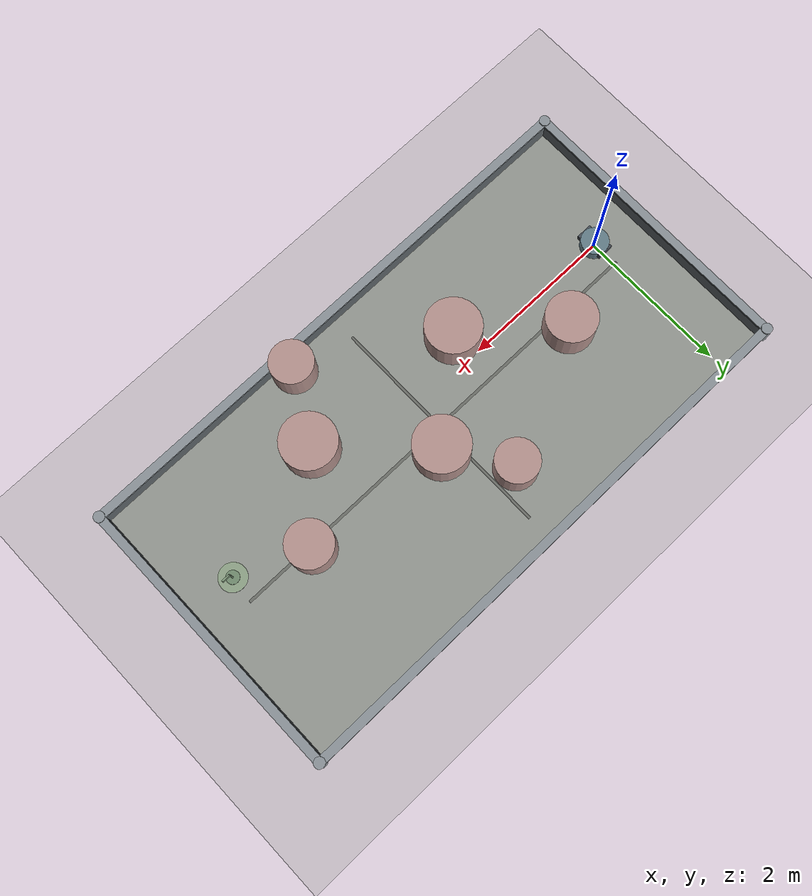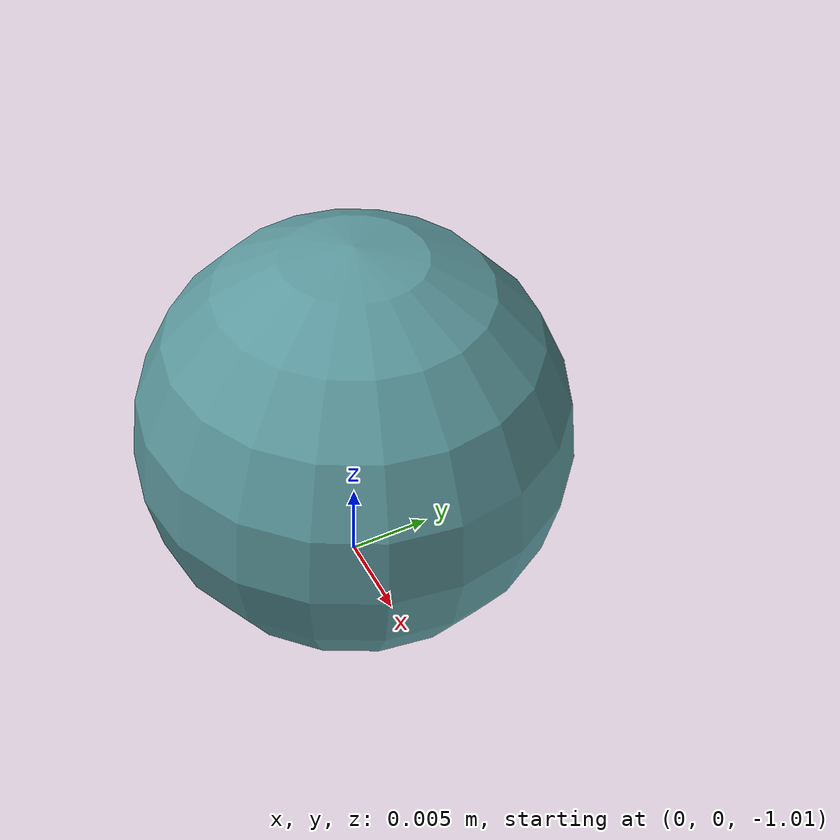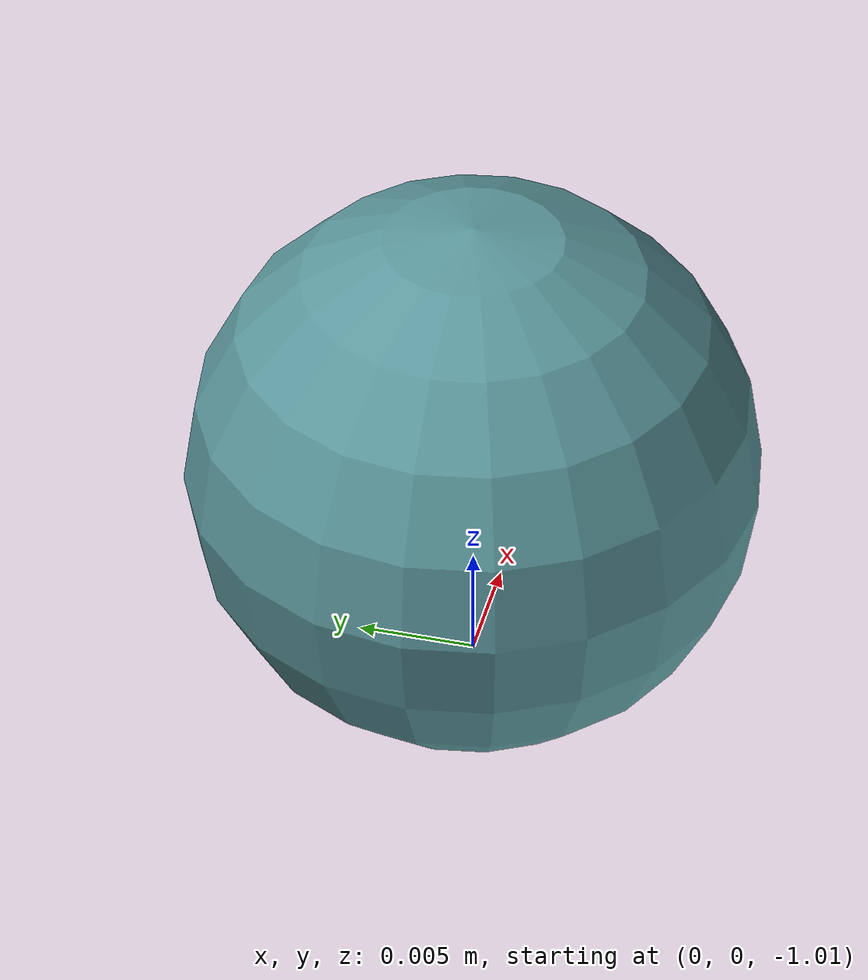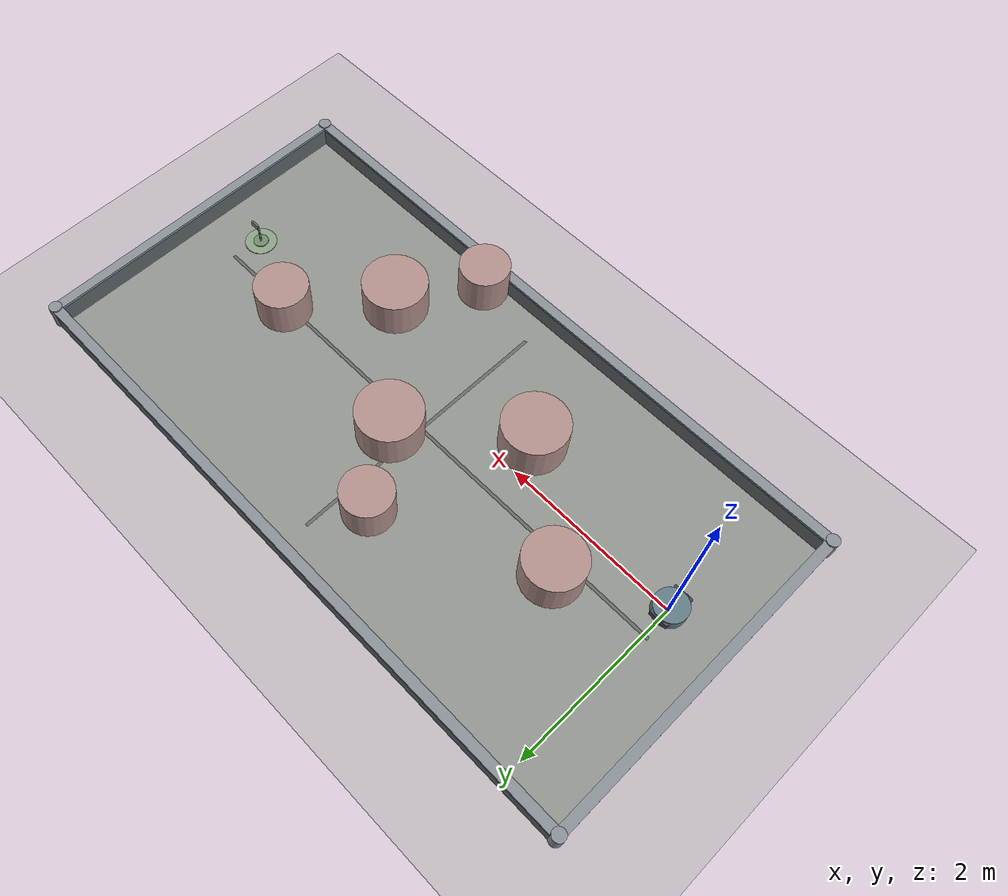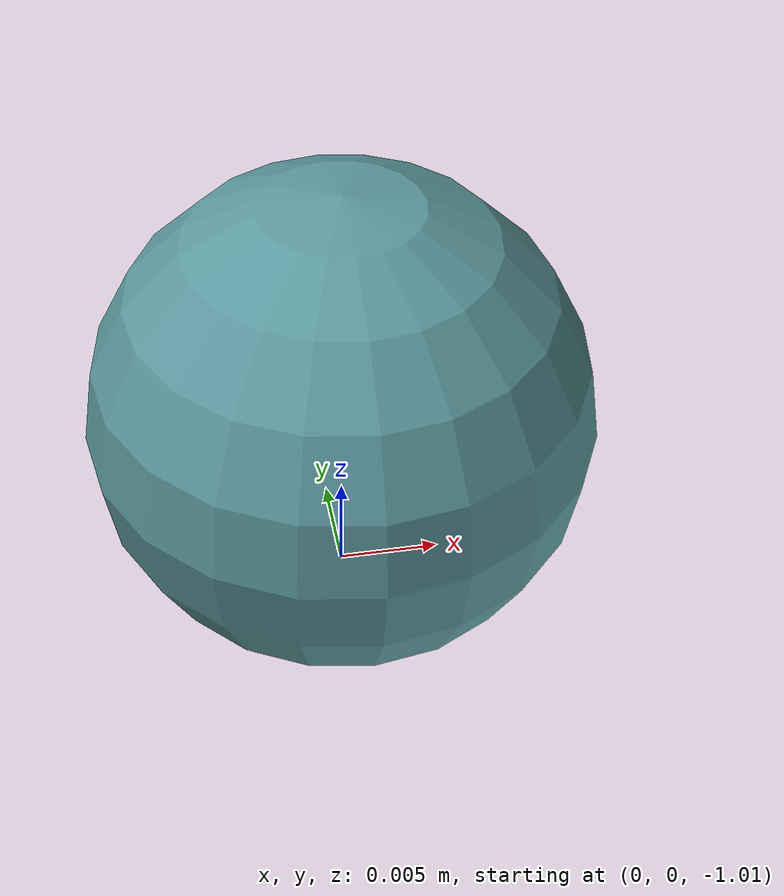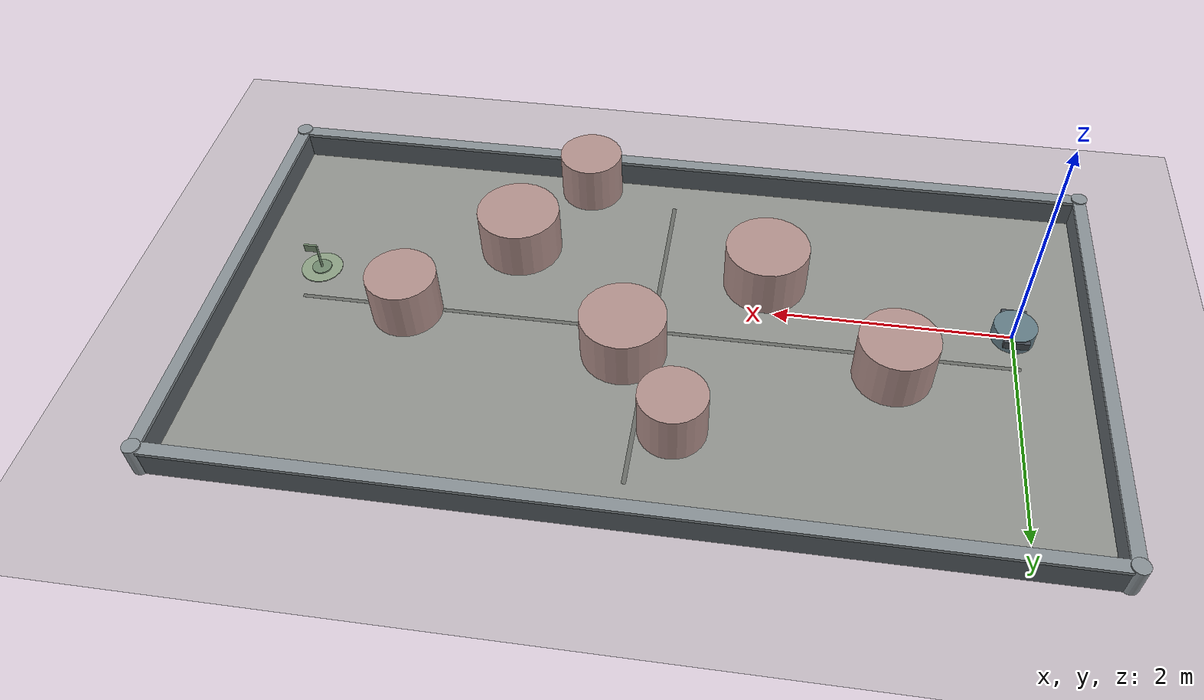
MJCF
<mujoco model="dense_scene">
  <compiler angle="radian"/>
  <option timestep="0.02" gravity="0 0 -9.81"/>

  <statistic center="3.0 0.35 0.20" extent="5.2"/>

  <visual>
    <headlight ambient="0.44 0.45 0.46" diffuse="0.66 0.67 0.69" specular="0.05 0.05 0.05"/>
    <rgba haze="0.78 0.79 0.80 1"/>
    <map znear="0.01" zfar="40"/>
  </visual>

  <asset>
    <texture name="sky_tex" type="skybox" builtin="gradient"
             rgb1="0.70 0.72 0.74" rgb2="0.52 0.55 0.58"
             width="512" height="512"/>

    <texture name="floor_tex" type="2d" builtin="checker"
             rgb1="0.64 0.64 0.62" rgb2="0.55 0.56 0.54"
             width="512" height="512"/>

    <material name="floor_mat" texture="floor_tex" texrepeat="12 12" reflectance="0.02"/>
    <material name="arena_mat" rgba="0.57 0.58 0.56 1"/>
    <material name="guide_mat" rgba="0.44 0.45 0.43 0.88"/>

    <material name="wall_mat" rgba="0.37 0.40 0.42 0.96"/>
    <material name="wall_cap_mat" rgba="0.54 0.57 0.59 1"/>

    <material name="robot_base_mat" rgba="0.39 0.49 0.53 1"/>
    <material name="robot_top_mat" rgba="0.74 0.76 0.74 1"/>
    <material name="robot_nose_mat" rgba="0.62 0.56 0.50 1"/>
    <material name="robot_wheel_mat" rgba="0.28 0.31 0.34 1"/>

    <material name="goal_ring_mat" rgba="0.55 0.63 0.52 0.94"/>
    <material name="goal_core_mat" rgba="0.44 0.54 0.43 1"/>
    <material name="goal_flag_mat" rgba="0.49 0.59 0.47 1"/>

    <material name="obs_body_mat" rgba="0.70 0.57 0.55 1"/>
    <material name="obs_cap_mat" rgba="0.78 0.68 0.66 1"/>
    <material name="obs_shadow_mat" rgba="0.38 0.31 0.30 0.14"/>

    <material name="pred_best_mat" rgba="0.36 0.60 0.62 1.00"/>
    <material name="pred_aux0_mat" rgba="0.74 0.63 0.42 1.00"/>
    <material name="pred_aux1_mat" rgba="0.66 0.54 0.60 1.00"/>
    <material name="trail_mat" rgba="0.67 0.54 0.40 0.92"/>
  </asset>

  <default>
    <default class="viz_only">
      <geom contype="0" conaffinity="0"/>
    </default>

    <default class="boundary_wall">
      <geom type="box" material="wall_mat"/>
    </default>

    <default class="pred_best_point">
      <geom type="sphere" size="0.0120" material="pred_best_mat" contype="0" conaffinity="0"/>
    </default>
    <default class="pred_aux0_point">
      <geom type="sphere" size="0.0100" material="pred_aux0_mat" contype="0" conaffinity="0"/>
    </default>
    <default class="pred_aux1_point">
      <geom type="sphere" size="0.0100" material="pred_aux1_mat" contype="0" conaffinity="0"/>
    </default>
    <default class="trail_point">
      <geom type="sphere" size="0.0060" material="trail_mat" contype="0" conaffinity="0"/>
    </default>
  </default>

  <worldbody>
    <light name="sun" pos="3.0 0.35 6.5" dir="0 0 -1" directional="true"
           diffuse="0.76 0.76 0.77" specular="0.08 0.08 0.08"/>
    <light name="fill" pos="1.5 -2.8 3.4" diffuse="0.18 0.18 0.18" specular="0 0 0"/>

    <geom name="floor" type="plane" size="8 8 0.1" material="floor_mat"/>
    <geom name="arena_pad" type="box" pos="3.0 0.35 0.006" size="3.60 1.85 0.006" material="arena_mat"/>

    <geom name="guide_center_x" type="box" pos="3.0 0.35 0.012" size="3.05 0.018 0.001" material="guide_mat" contype="0" conaffinity="0"/>
    <geom name="guide_center_y" type="box" pos="3.0 0.35 0.012" size="0.018 1.55 0.001" material="guide_mat" contype="0" conaffinity="0"/>

    <!-- visible bounds aligned with dense scene bounds -->
    <body name="boundary_left" pos="-0.65 0.35 0.12">
      <geom class="boundary_wall" size="0.05 1.85 0.12"/>
      <geom type="box" pos="0 0 0.13" size="0.055 1.88 0.015" material="wall_cap_mat"/>
    </body>

    <body name="boundary_right" pos="6.65 0.35 0.12">
      <geom class="boundary_wall" size="0.05 1.85 0.12"/>
      <geom type="box" pos="0 0 0.13" size="0.055 1.88 0.015" material="wall_cap_mat"/>
    </body>

    <body name="boundary_bottom" pos="3.0 -1.55 0.12">
      <geom class="boundary_wall" size="3.65 0.05 0.12"/>
      <geom type="box" pos="0 0 0.13" size="3.68 0.055 0.015" material="wall_cap_mat"/>
    </body>

    <body name="boundary_top" pos="3.0 2.25 0.12">
      <geom class="boundary_wall" size="3.65 0.05 0.12"/>
      <geom type="box" pos="0 0 0.13" size="3.68 0.055 0.015" material="wall_cap_mat"/>
    </body>

    <body name="corner_lb" pos="-0.65 -1.55 0.14">
      <geom type="cylinder" size="0.07 0.14" material="wall_cap_mat"/>
    </body>
    <body name="corner_lt" pos="-0.65 2.25 0.14">
      <geom type="cylinder" size="0.07 0.14" material="wall_cap_mat"/>
    </body>
    <body name="corner_rb" pos="6.65 -1.55 0.14">
      <geom type="cylinder" size="0.07 0.14" material="wall_cap_mat"/>
    </body>
    <body name="corner_rt" pos="6.65 2.25 0.14">
      <geom type="cylinder" size="0.07 0.14" material="wall_cap_mat"/>
    </body>

    <body name="robot" pos="0 0 0.08">
      <freejoint/>
      <geom name="robot_body" type="cylinder" size="0.18 0.08" material="robot_base_mat"/>
      <geom name="robot_top" type="cylinder" pos="0 0 0.050" size="0.135 0.018" material="robot_top_mat"/>
      <geom name="robot_nose" type="box" pos="0.125 0 0.055" size="0.050 0.028 0.018" material="robot_nose_mat"/>
      <geom name="robot_left_wheel" type="box" pos="0 0.170 0.035" size="0.105 0.020 0.035" material="robot_wheel_mat"/>
      <geom name="robot_right_wheel" type="box" pos="0 -0.170 0.035" size="0.105 0.020 0.035" material="robot_wheel_mat"/>
    </body>

    <body name="goal_marker" pos="6.0 0.0 0.0">
      <geom name="goal_ring" type="cylinder" pos="0 0 0.010" size="0.18 0.010" material="goal_ring_mat" contype="0" conaffinity="0"/>
      <geom name="goal_core" type="cylinder" pos="0 0 0.022" size="0.085 0.010" material="goal_core_mat" contype="0" conaffinity="0"/>
      <geom name="goal_pole" type="cylinder" pos="0 0 0.145" size="0.010 0.120" material="goal_core_mat" contype="0" conaffinity="0"/>
      <geom name="goal_flag" type="box" pos="0.055 0 0.245" size="0.055 0.010 0.035" material="goal_flag_mat" contype="0" conaffinity="0"/>
    </body>

    <body name="obs1" pos="1.0 0.55 0.23">
      <geom type="cylinder" size="0.33 0.23" material="obs_body_mat"/>
      <geom type="cylinder" pos="0 0 0.185" size="0.28 0.035" material="obs_cap_mat"/>
      <geom type="cylinder" pos="0 0 -0.228" size="0.39 0.004" material="obs_shadow_mat" contype="0" conaffinity="0"/>
    </body>
    <body name="obs2" pos="2.1 -0.35 0.23">
      <geom type="cylinder" size="0.36 0.23" material="obs_body_mat"/>
      <geom type="cylinder" pos="0 0 0.185" size="0.31 0.035" material="obs_cap_mat"/>
      <geom type="cylinder" pos="0 0 -0.228" size="0.42 0.004" material="obs_shadow_mat" contype="0" conaffinity="0"/>
    </body>
    <body name="obs3" pos="3.2 0.60 0.23">
      <geom type="cylinder" size="0.36 0.23" material="obs_body_mat"/>
      <geom type="cylinder" pos="0 0 0.185" size="0.31 0.035" material="obs_cap_mat"/>
      <geom type="cylinder" pos="0 0 -0.228" size="0.42 0.004" material="obs_shadow_mat" contype="0" conaffinity="0"/>
    </body>
    <body name="obs4" pos="4.3 -0.50 0.23">
      <geom type="cylinder" size="0.36 0.23" material="obs_body_mat"/>
      <geom type="cylinder" pos="0 0 0.185" size="0.31 0.035" material="obs_cap_mat"/>
      <geom type="cylinder" pos="0 0 -0.228" size="0.42 0.004" material="obs_shadow_mat" contype="0" conaffinity="0"/>
    </body>
    <body name="obs5" pos="5.1 0.40 0.23">
      <geom type="cylinder" size="0.30 0.23" material="obs_body_mat"/>
      <geom type="cylinder" pos="0 0 0.185" size="0.25 0.035" material="obs_cap_mat"/>
      <geom type="cylinder" pos="0 0 -0.228" size="0.36 0.004" material="obs_shadow_mat" contype="0" conaffinity="0"/>
    </body>
    <body name="obs6" pos="2.7 1.35 0.23">
      <geom type="cylinder" size="0.28 0.23" material="obs_body_mat"/>
      <geom type="cylinder" pos="0 0 0.185" size="0.23 0.035" material="obs_cap_mat"/>
      <geom type="cylinder" pos="0 0 -0.228" size="0.34 0.004" material="obs_shadow_mat" contype="0" conaffinity="0"/>
    </body>
    <body name="obs7" pos="3.8 -1.35 0.23">
      <geom type="cylinder" size="0.28 0.23" material="obs_body_mat"/>
      <geom type="cylinder" pos="0 0 0.185" size="0.23 0.035" material="obs_cap_mat"/>
      <geom type="cylinder" pos="0 0 -0.228" size="0.34 0.004" material="obs_shadow_mat" contype="0" conaffinity="0"/>
    </body>
    <body name="pred_best_0" mocap="true" pos="0 0 -1"><geom class="pred_best_point"/></body>
    <body name="pred_best_1" mocap="true" pos="0 0 -1"><geom class="pred_best_point"/></body>
    <body name="pred_best_2" mocap="true" pos="0 0 -1"><geom class="pred_best_point"/></body>
    <body name="pred_best_3" mocap="true" pos="0 0 -1"><geom class="pred_best_point"/></body>
    <body name="pred_best_4" mocap="true" pos="0 0 -1"><geom class="pred_best_point"/></body>
    <body name="pred_best_5" mocap="true" pos="0 0 -1"><geom class="pred_best_point"/></body>
    <body name="pred_best_6" mocap="true" pos="0 0 -1"><geom class="pred_best_point"/></body>
    <body name="pred_best_7" mocap="true" pos="0 0 -1"><geom class="pred_best_point"/></body>
    <body name="pred_best_8" mocap="true" pos="0 0 -1"><geom class="pred_best_point"/></body>
    <body name="pred_best_9" mocap="true" pos="0 0 -1"><geom class="pred_best_point"/></body>
    <body name="pred_best_10" mocap="true" pos="0 0 -1"><geom class="pred_best_point"/></body>
    <body name="pred_best_11" mocap="true" pos="0 0 -1"><geom class="pred_best_point"/></body>
    <body name="pred_best_12" mocap="true" pos="0 0 -1"><geom class="pred_best_point"/></body>
    <body name="pred_best_13" mocap="true" pos="0 0 -1"><geom class="pred_best_point"/></body>
    <body name="pred_best_14" mocap="true" pos="0 0 -1"><geom class="pred_best_point"/></body>
    <body name="pred_best_15" mocap="true" pos="0 0 -1"><geom class="pred_best_point"/></body>
    <body name="pred_best_16" mocap="true" pos="0 0 -1"><geom class="pred_best_point"/></body>
    <body name="pred_best_17" mocap="true" pos="0 0 -1"><geom class="pred_best_point"/></body>
    <body name="pred_best_18" mocap="true" pos="0 0 -1"><geom class="pred_best_point"/></body>
    <body name="pred_best_19" mocap="true" pos="0 0 -1"><geom class="pred_best_point"/></body>
    <body name="pred_best_20" mocap="true" pos="0 0 -1"><geom class="pred_best_point"/></body>
    <body name="pred_best_21" mocap="true" pos="0 0 -1"><geom class="pred_best_point"/></body>
    <body name="pred_best_22" mocap="true" pos="0 0 -1"><geom class="pred_best_point"/></body>
    <body name="pred_best_23" mocap="true" pos="0 0 -1"><geom class="pred_best_point"/></body>
    <body name="pred_best_24" mocap="true" pos="0 0 -1"><geom class="pred_best_point"/></body>
    <body name="pred_best_25" mocap="true" pos="0 0 -1"><geom class="pred_best_point"/></body>
    <body name="pred_best_26" mocap="true" pos="0 0 -1"><geom class="pred_best_point"/></body>
    <body name="pred_best_27" mocap="true" pos="0 0 -1"><geom class="pred_best_point"/></body>
    <body name="pred_best_28" mocap="true" pos="0 0 -1"><geom class="pred_best_point"/></body>
    <body name="pred_best_29" mocap="true" pos="0 0 -1"><geom class="pred_best_point"/></body>
    <body name="pred_best_30" mocap="true" pos="0 0 -1"><geom class="pred_best_point"/></body>
    <body name="pred_best_31" mocap="true" pos="0 0 -1"><geom class="pred_best_point"/></body>
    <body name="pred_best_32" mocap="true" pos="0 0 -1"><geom class="pred_best_point"/></body>
    <body name="pred_best_33" mocap="true" pos="0 0 -1"><geom class="pred_best_point"/></body>
    <body name="pred_best_34" mocap="true" pos="0 0 -1"><geom class="pred_best_point"/></body>
    <body name="pred_best_35" mocap="true" pos="0 0 -1"><geom class="pred_best_point"/></body>
    <body name="pred_best_36" mocap="true" pos="0 0 -1"><geom class="pred_best_point"/></body>
    <body name="pred_best_37" mocap="true" pos="0 0 -1"><geom class="pred_best_point"/></body>
    <body name="pred_best_38" mocap="true" pos="0 0 -1"><geom class="pred_best_point"/></body>
    <body name="pred_best_39" mocap="true" pos="0 0 -1"><geom class="pred_best_point"/></body>
    <body name="pred_aux0_0" mocap="true" pos="0 0 -1"><geom class="pred_aux0_point"/></body>
    <body name="pred_aux0_1" mocap="true" pos="0 0 -1"><geom class="pred_aux0_point"/></body>
    <body name="pred_aux0_2" mocap="true" pos="0 0 -1"><geom class="pred_aux0_point"/></body>
    <body name="pred_aux0_3" mocap="true" pos="0 0 -1"><geom class="pred_aux0_point"/></body>
    <body name="pred_aux0_4" mocap="true" pos="0 0 -1"><geom class="pred_aux0_point"/></body>
    <body name="pred_aux0_5" mocap="true" pos="0 0 -1"><geom class="pred_aux0_point"/></body>
    <body name="pred_aux0_6" mocap="true" pos="0 0 -1"><geom class="pred_aux0_point"/></body>
    <body name="pred_aux0_7" mocap="true" pos="0 0 -1"><geom class="pred_aux0_point"/></body>
    <body name="pred_aux0_8" mocap="true" pos="0 0 -1"><geom class="pred_aux0_point"/></body>
    <body name="pred_aux0_9" mocap="true" pos="0 0 -1"><geom class="pred_aux0_point"/></body>
    <body name="pred_aux0_10" mocap="true" pos="0 0 -1"><geom class="pred_aux0_point"/></body>
    <body name="pred_aux0_11" mocap="true" pos="0 0 -1"><geom class="pred_aux0_point"/></body>
    <body name="pred_aux0_12" mocap="true" pos="0 0 -1"><geom class="pred_aux0_point"/></body>
    <body name="pred_aux0_13" mocap="true" pos="0 0 -1"><geom class="pred_aux0_point"/></body>
    <body name="pred_aux0_14" mocap="true" pos="0 0 -1"><geom class="pred_aux0_point"/></body>
    <body name="pred_aux0_15" mocap="true" pos="0 0 -1"><geom class="pred_aux0_point"/></body>
    <body name="pred_aux0_16" mocap="true" pos="0 0 -1"><geom class="pred_aux0_point"/></body>
    <body name="pred_aux0_17" mocap="true" pos="0 0 -1"><geom class="pred_aux0_point"/></body>
    <body name="pred_aux0_18" mocap="true" pos="0 0 -1"><geom class="pred_aux0_point"/></body>
    <body name="pred_aux0_19" mocap="true" pos="0 0 -1"><geom class="pred_aux0_point"/></body>
    <body name="pred_aux0_20" mocap="true" pos="0 0 -1"><geom class="pred_aux0_point"/></body>
    <body name="pred_aux0_21" mocap="true" pos="0 0 -1"><geom class="pred_aux0_point"/></body>
    <body name="pred_aux0_22" mocap="true" pos="0 0 -1"><geom class="pred_aux0_point"/></body>
    <body name="pred_aux0_23" mocap="true" pos="0 0 -1"><geom class="pred_aux0_point"/></body>
    <body name="pred_aux0_24" mocap="true" pos="0 0 -1"><geom class="pred_aux0_point"/></body>
    <body name="pred_aux0_25" mocap="true" pos="0 0 -1"><geom class="pred_aux0_point"/></body>
    <body name="pred_aux0_26" mocap="true" pos="0 0 -1"><geom class="pred_aux0_point"/></body>
    <body name="pred_aux0_27" mocap="true" pos="0 0 -1"><geom class="pred_aux0_point"/></body>
    <body name="pred_aux0_28" mocap="true" pos="0 0 -1"><geom class="pred_aux0_point"/></body>
    <body name="pred_aux0_29" mocap="true" pos="0 0 -1"><geom class="pred_aux0_point"/></body>
    <body name="pred_aux0_30" mocap="true" pos="0 0 -1"><geom class="pred_aux0_point"/></body>
    <body name="pred_aux0_31" mocap="true" pos="0 0 -1"><geom class="pred_aux0_point"/></body>
    <body name="pred_aux0_32" mocap="true" pos="0 0 -1"><geom class="pred_aux0_point"/></body>
    <body name="pred_aux0_33" mocap="true" pos="0 0 -1"><geom class="pred_aux0_point"/></body>
    <body name="pred_aux0_34" mocap="true" pos="0 0 -1"><geom class="pred_aux0_point"/></body>
    <body name="pred_aux0_35" mocap="true" pos="0 0 -1"><geom class="pred_aux0_point"/></body>
    <body name="pred_aux0_36" mocap="true" pos="0 0 -1"><geom class="pred_aux0_point"/></body>
    <body name="pred_aux0_37" mocap="true" pos="0 0 -1"><geom class="pred_aux0_point"/></body>
    <body name="pred_aux0_38" mocap="true" pos="0 0 -1"><geom class="pred_aux0_point"/></body>
    <body name="pred_aux0_39" mocap="true" pos="0 0 -1"><geom class="pred_aux0_point"/></body>
    <body name="pred_aux1_0" mocap="true" pos="0 0 -1"><geom class="pred_aux1_point"/></body>
    <body name="pred_aux1_1" mocap="true" pos="0 0 -1"><geom class="pred_aux1_point"/></body>
    <body name="pred_aux1_2" mocap="true" pos="0 0 -1"><geom class="pred_aux1_point"/></body>
    <body name="pred_aux1_3" mocap="true" pos="0 0 -1"><geom class="pred_aux1_point"/></body>
    <body name="pred_aux1_4" mocap="true" pos="0 0 -1"><geom class="pred_aux1_point"/></body>
    <body name="pred_aux1_5" mocap="true" pos="0 0 -1"><geom class="pred_aux1_point"/></body>
    <body name="pred_aux1_6" mocap="true" pos="0 0 -1"><geom class="pred_aux1_point"/></body>
    <body name="pred_aux1_7" mocap="true" pos="0 0 -1"><geom class="pred_aux1_point"/></body>
    <body name="pred_aux1_8" mocap="true" pos="0 0 -1"><geom class="pred_aux1_point"/></body>
    <body name="pred_aux1_9" mocap="true" pos="0 0 -1"><geom class="pred_aux1_point"/></body>
    <body name="pred_aux1_10" mocap="true" pos="0 0 -1"><geom class="pred_aux1_point"/></body>
    <body name="pred_aux1_11" mocap="true" pos="0 0 -1"><geom class="pred_aux1_point"/></body>
    <body name="pred_aux1_12" mocap="true" pos="0 0 -1"><geom class="pred_aux1_point"/></body>
    <body name="pred_aux1_13" mocap="true" pos="0 0 -1"><geom class="pred_aux1_point"/></body>
    <body name="pred_aux1_14" mocap="true" pos="0 0 -1"><geom class="pred_aux1_point"/></body>
    <body name="pred_aux1_15" mocap="true" pos="0 0 -1"><geom class="pred_aux1_point"/></body>
    <body name="pred_aux1_16" mocap="true" pos="0 0 -1"><geom class="pred_aux1_point"/></body>
    <body name="pred_aux1_17" mocap="true" pos="0 0 -1"><geom class="pred_aux1_point"/></body>
    <body name="pred_aux1_18" mocap="true" pos="0 0 -1"><geom class="pred_aux1_point"/></body>
    <body name="pred_aux1_19" mocap="true" pos="0 0 -1"><geom class="pred_aux1_point"/></body>
    <body name="pred_aux1_20" mocap="true" pos="0 0 -1"><geom class="pred_aux1_point"/></body>
    <body name="pred_aux1_21" mocap="true" pos="0 0 -1"><geom class="pred_aux1_point"/></body>
    <body name="pred_aux1_22" mocap="true" pos="0 0 -1"><geom class="pred_aux1_point"/></body>
    <body name="pred_aux1_23" mocap="true" pos="0 0 -1"><geom class="pred_aux1_point"/></body>
    <body name="pred_aux1_24" mocap="true" pos="0 0 -1"><geom class="pred_aux1_point"/></body>
    <body name="pred_aux1_25" mocap="true" pos="0 0 -1"><geom class="pred_aux1_point"/></body>
    <body name="pred_aux1_26" mocap="true" pos="0 0 -1"><geom class="pred_aux1_point"/></body>
    <body name="pred_aux1_27" mocap="true" pos="0 0 -1"><geom class="pred_aux1_point"/></body>
    <body name="pred_aux1_28" mocap="true" pos="0 0 -1"><geom class="pred_aux1_point"/></body>
    <body name="pred_aux1_29" mocap="true" pos="0 0 -1"><geom class="pred_aux1_point"/></body>
    <body name="pred_aux1_30" mocap="true" pos="0 0 -1"><geom class="pred_aux1_point"/></body>
    <body name="pred_aux1_31" mocap="true" pos="0 0 -1"><geom class="pred_aux1_point"/></body>
    <body name="pred_aux1_32" mocap="true" pos="0 0 -1"><geom class="pred_aux1_point"/></body>
    <body name="pred_aux1_33" mocap="true" pos="0 0 -1"><geom class="pred_aux1_point"/></body>
    <body name="pred_aux1_34" mocap="true" pos="0 0 -1"><geom class="pred_aux1_point"/></body>
    <body name="pred_aux1_35" mocap="true" pos="0 0 -1"><geom class="pred_aux1_point"/></body>
    <body name="pred_aux1_36" mocap="true" pos="0 0 -1"><geom class="pred_aux1_point"/></body>
    <body name="pred_aux1_37" mocap="true" pos="0 0 -1"><geom class="pred_aux1_point"/></body>
    <body name="pred_aux1_38" mocap="true" pos="0 0 -1"><geom class="pred_aux1_point"/></body>
    <body name="pred_aux1_39" mocap="true" pos="0 0 -1"><geom class="pred_aux1_point"/></body>
  </worldbody>
</mujoco>
